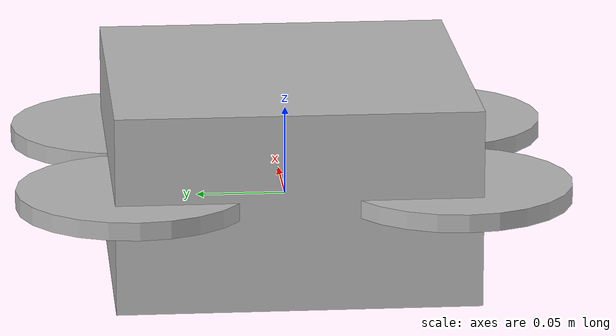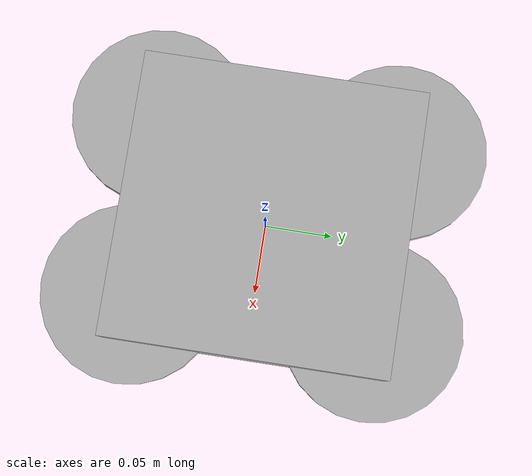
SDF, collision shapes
<?xml version="1.0"?>

<sdf version="1.10">

  <model name="starling_v2_notune">

    <pose>0 0 0 0 0 0</pose>
    <self_collide>false</self_collide>
    <static>false</static>

    <link name="base_link">

      <pose>0 0 0 0 0 0</pose>

      <inertial>
        <pose>0 0 0 0 0 0</pose>
        <mass>0.280</mass>
        <inertia>
          <ixx>0.006</ixx>
          <ixy>0</ixy>
          <ixz>0</ixz>
          <iyy>0.006</iyy>
          <iyz>0</iyz>
          <izz>0.010</izz>
        </inertia>
      </inertial>

      <collision name="base_link_collision">
        <pose>0 0 0.018 0 0 0</pose>
        <geometry>
          <box>
            <size>0.20 0.20 0.11</size>
          </box>
        </geometry>
      </collision>

      <visual name="base_link_visual">
        <pose>0 0 0 1.57079632679 0 1.57079632679</pose>
        <geometry>
          <mesh>
            <scale>0.001 0.001 0.001</scale>
            <uri>meshes/Starling_base.obj</uri>
          </mesh>
        </geometry>
        <cast_shadows>false</cast_shadows>
      </visual>

      <sensor name="imu_sensor" type="imu">
        <always_on>true</always_on>
        <update_rate>200</update_rate>
        <imu>
          <enable_orientation>true</enable_orientation>
          <angular_velocity>
            <x>
              <noise type="gaussian">
                <mean>0</mean>
                <stddev>0.0005</stddev>
                <bias_mean>0.0</bias_mean>
                <bias_stddev>0.0002</bias_stddev>
                <dynamic_bias_stddev>0.0</dynamic_bias_stddev>
                <dynamic_bias_correlation_time>1000.0</dynamic_bias_correlation_time>
                <precision>0.00001</precision>
              </noise>
            </x>
            <y>
              <noise type="gaussian">
                <mean>0</mean>
                <stddev>0.0005</stddev>
                <bias_mean>0.0</bias_mean>
                <bias_stddev>0.0002</bias_stddev>
                <dynamic_bias_stddev>0.0</dynamic_bias_stddev>
                <dynamic_bias_correlation_time>1000.0</dynamic_bias_correlation_time>
                <precision>0.00001</precision>
              </noise>
            </y>
            <z>
              <noise type="gaussian">
                <mean>0</mean>
                <stddev>0.0005</stddev>
                <bias_mean>0.0</bias_mean>
                <bias_stddev>0.0002</bias_stddev>
                <dynamic_bias_stddev>0.0</dynamic_bias_stddev>
                <dynamic_bias_correlation_time>1000.0</dynamic_bias_correlation_time>
                <precision>0.00001</precision>
              </noise>
            </z>
          </angular_velocity>
          <linear_acceleration>
            <x>
              <noise type="gaussian">
                <mean>0</mean>
                <stddev>0.003</stddev>
                <bias_mean>0.0</bias_mean>
                <bias_stddev>0.005</bias_stddev>
                <dynamic_bias_stddev>0.0</dynamic_bias_stddev>
                <dynamic_bias_correlation_time>1000.0</dynamic_bias_correlation_time>
                <precision>0.001</precision>
              </noise>
            </x>
            <y>
              <noise type="gaussian">
                <mean>0</mean>
                <stddev>0.003</stddev>
                <bias_mean>0.0</bias_mean>
                <bias_stddev>0.005</bias_stddev>
                <dynamic_bias_stddev>0.0</dynamic_bias_stddev>
                <dynamic_bias_correlation_time>1000.0</dynamic_bias_correlation_time>
                <precision>0.001</precision>
              </noise>
            </y>
            <z>
              <noise type="gaussian">
                <mean>0</mean>
                <stddev>0.003</stddev>
                <bias_mean>0.0</bias_mean>
                <bias_stddev>0.005</bias_stddev>
                <dynamic_bias_stddev>0.0</dynamic_bias_stddev>
                <dynamic_bias_correlation_time>1000.0</dynamic_bias_correlation_time>
                <precision>0.001</precision>
              </noise>
            </z>
          </linear_acceleration>
        </imu>
      </sensor>

      <sensor name="air_pressure_sensor" type="air_pressure">
        <always_on>true</always_on>
        <update_rate>50</update_rate>
        <air_pressure>
          <pressure>
            <noise type="gaussian">
              <mean>0</mean>
              <stddev>0.01</stddev>
            </noise>
          </pressure>
        </air_pressure>
      </sensor>

      <sensor name="magnetometer_sensor" type="magnetometer">
        <always_on>true</always_on>
        <update_rate>100</update_rate>
        <magnetometer>
          <x>
            <noise type="gaussian">
              <stddev>0.0001</stddev>
            </noise>
          </x>
          <y>
            <noise type="gaussian">
              <stddev>0.0001</stddev>
            </noise>
          </y>
          <z>
            <noise type="gaussian">
              <stddev>0.0001</stddev>
            </noise>
          </z>
        </magnetometer>
      </sensor>

      <sensor name="IMX412_front" type="camera">
        <pose>0.07 0.006 0.002 0 0 0</pose>
        <always_on>false</always_on>
        <update_rate>5</update_rate>
        <camera>
          <horizontal_fov>2.1014</horizontal_fov>
          <lens>
            <intrinsics>
              <fx>1161</fx>
              <fy>1161</fy>
              <cx>2028</cx>
              <cy>1520</cy>
              <s>0</s>
            </intrinsics>
          </lens>
          <distortion>
            <k1>0.0</k1>
            <k2>0.0</k2>
            <k3>0.0</k3>
            <p1>0.0</p1>
            <p2>0.0</p2>
            <center>0.5 0.5</center>
          </distortion>
          <image>
            <width>4056</width>
            <height>3040</height>
            <format>R8G8B8</format>
          </image>
          <clip>
            <near>0.02</near>
            <far>100</far>
          </clip>
          <noise>
            <type>gaussian</type>
            <mean>0</mean>
            <stddev>0.007</stddev>
          </noise>
        </camera>
      </sensor>

      <sensor name="AR0144_front" type="camera">
        <pose>0.07 0.006 0.010 0 0 0</pose>
        <always_on>false</always_on>
        <update_rate>1</update_rate>
        <camera>
          <horizontal_fov>2.303</horizontal_fov>
          <lens>
            <intrinsics>
              <fx>605</fx>
              <fy>604</fy>
              <cx>640</cx>
              <cy>400</cy>
              <s>0</s>
            </intrinsics>
          </lens>
          <distortion>
            <k1>0.0</k1>
            <k2>0.0</k2>
            <k3>0.0</k3>
            <p1>0.0</p1>
            <p2>0.0</p2>
            <center>0.5 0.5</center>
          </distortion>
          <image>
            <width>1280</width>
            <height>800</height>
            <format>R8G8B8</format>
          </image>
          <clip>
            <near>0.02</near>
            <far>100</far>
          </clip>
          <noise>
            <type>gaussian</type>
            <mean>0</mean>
            <stddev>0.007</stddev>
          </noise>
        </camera>
      </sensor>

       <sensor name="AR0144_back" type="camera">
        <pose>-0.062 -0.010 0.016 0 0 3.14159265</pose>
        <always_on>false</always_on>
        <update_rate>1</update_rate>
        <camera>
          <horizontal_fov>2.303</horizontal_fov>
          <lens>
            <intrinsics>
              <fx>605</fx>
              <fy>604</fy>
              <cx>640</cx>
              <cy>400</cy>
              <s>0</s>
            </intrinsics>
          </lens>
          <distortion>
            <k1>0.0</k1>
            <k2>0.0</k2>
            <k3>0.0</k3>
            <p1>0.0</p1>
            <p2>0.0</p2>
            <center>0.5 0.5</center>
          </distortion>
          <image>
            <width>1280</width>
            <height>800</height>
            <format>R8G8B8</format>
          </image>
          <clip>
            <near>0.02</near>
            <far>100</far>
          </clip>
          <noise>
            <type>gaussian</type>
            <mean>0</mean>
            <stddev>0.007</stddev>
          </noise>
        </camera>
      </sensor>

      <sensor name="AR0144_down" type="camera">
        <pose>-0.057 0.011 -0.009 0 1.571 -1.571</pose>
        <always_on>false</always_on>
        <update_rate>10</update_rate>
        <camera>
          <horizontal_fov>2.303</horizontal_fov>
          <lens>
            <intrinsics>
              <fx>605</fx>
              <fy>604</fy>
              <cx>640</cx>
              <cy>400</cy>
              <s>0</s>
            </intrinsics>
          </lens>
          <distortion>
            <k1>0.0</k1>
            <k2>0.0</k2>
            <k3>0.0</k3>
            <p1>0.0</p1>
            <p2>0.0</p2>
            <center>0.5 0.5</center>
          </distortion>
          <image>
            <width>1280</width>
            <height>800</height>
            <format>R8G8B8</format>
          </image>
          <clip>
            <near>0.02</near>
            <far>100</far>
          </clip>
          <noise>
            <type>gaussian</type>
            <mean>0</mean>
            <stddev>0.007</stddev>
          </noise>
        </camera>
      </sensor>

      <sensor name="pmd_flexx2_tof" type="depth_camera">
        <pose>0.07 -0.0095 0.016 0 0 0</pose> <!-- Adjust position and orientation as needed -->
        <always_on>true</always_on>
        <update_rate>5</update_rate>
        <camera>
          <!-- 1.85 rad = 106 deg horizontal, per the M0178 datasheet. Vertical (86 deg real)
               and diagonal are not settable: gz derives them from this and the 4:3 aspect. -->
          <horizontal_fov>1.85</horizontal_fov>
          <image>
            <width>240</width>
            <height>180</height>
            <format>R8G8B8</format>
          </image>
          <clip>
            <near>0.1</near>
            <far>5.0</far>
          </clip>
          <noise>
            <type>gaussian</type>
            <mean>0</mean>
            <stddev>0.0</stddev>
          </noise>
        </camera>
        <visualize>true</visualize>
      </sensor>

      <sensor name="VL53L1X_down" type="gpu_lidar">
        <pose>-0.057 -0.011 -0.009 0 1.571 0</pose>
        <always_on>true</always_on>
        <update_rate>10</update_rate>
        <visualize>true</visualize>
        <ray>
          <scan>
            <horizontal>
              <samples>100</samples>
              <resolution>1</resolution>
              <min_angle>-0.5</min_angle>
              <max_angle>0.5</max_angle>
            </horizontal>
            <vertical>
              <samples>1</samples>
              <resolution>1</resolution>
              <min_angle>0</min_angle>
              <max_angle>0</max_angle>
            </vertical>
          </scan>
          <range>
            <min>0.001</min>
            <max>4</max>
            <resolution>0.01</resolution>
          </range>
          <noise>
            <type>gaussian</type>
            <mean>0</mean>
            <stddev>0.001</stddev>
          </noise>
        </ray>
      </sensor>

      <sensor name="navsat_sensor" type="navsat">
        <always_on>true</always_on>
        <update_rate>10</update_rate>
      </sensor>

    </link>

    <link name="rotor_1">

      <pose>-0.066 0.088 0.01470 0 0 0</pose>

      <inertial>
        <pose>0 0 0 0 0 0</pose>
        <mass>0.005</mass>
        <inertia>
          <ixx>9.75e-07</ixx>
          <ixy>0</ixy>
          <ixz>0</ixz>
          <iyy>8.13545e-05</iyy>
          <iyz>0</iyz>
          <izz>8.22545e-05</izz>
        </inertia>
      </inertial>

      <collision name="rotor_1_collision">
        <pose>0 0 0.005 0 0 0</pose>
        <geometry>
          <cylinder>
            <length>0.010</length>
            <radius>0.065</radius>
          </cylinder>
        </geometry>
        <surface>
          <contact>
            <ode />
          </contact>
          <friction>
            <ode />
          </friction>
        </surface>
      </collision>

      <visual name="rotor_1_visual">
        <pose>0 0 0 1.57079632679 0 -1.57079632679</pose>
        <geometry>
          <mesh>
            <scale>0.001 0.001 0.001</scale>
            <uri>meshes/Starling_propeller_CCW.obj</uri>
          </mesh>
        </geometry>
        <cast_shadows>false</cast_shadows>
      </visual>
      <gravity>true</gravity>
      <velocity_decay />
    </link>

    <link name="rotor_0">

      <pose>0.066 -0.088 0.01470 0 0 0</pose>

      <inertial>
        <pose>0 0 0 0 0 0</pose>
        <mass>0.005</mass>
        <inertia>
          <ixx>9.75e-07</ixx>
          <ixy>0</ixy>
          <ixz>0</ixz>
          <iyy>8.13545e-05</iyy>
          <iyz>0</iyz>
          <izz>8.22545e-05</izz>
        </inertia>
      </inertial>

      <collision name="rotor_0_collision">
        <pose>0 0 0.005 0 0 0</pose>
        <geometry>
          <cylinder>
            <length>0.010</length>
            <radius>0.065</radius>
          </cylinder>
        </geometry>
        <surface>
          <contact>
            <ode />
          </contact>
          <friction>
            <ode />
          </friction>
        </surface>
      </collision>

      <visual name="rotor_0_visual">
        <pose>0 0 0 1.57079632679 0 -1.57079632679</pose>
        <geometry>
          <mesh>
            <scale>0.001 0.001 0.001</scale>
            <uri>meshes/Starling_propeller_CCW.obj</uri>
          </mesh>
        </geometry>
        <cast_shadows>false</cast_shadows>
      </visual>
      <gravity>true</gravity>
      <velocity_decay />
    </link>

    <link name="rotor_3">

      <pose>-0.066 -0.088 0.01470 0 0 0</pose>

      <inertial>
        <pose>0 0 0 0 0 0</pose>
        <mass>0.005</mass>
        <inertia>
          <ixx>9.75e-07</ixx>
          <ixy>0</ixy>
          <ixz>0</ixz>
          <iyy>8.13545e-05</iyy>
          <iyz>0</iyz>
          <izz>8.22545e-05</izz>
        </inertia>
      </inertial>

      <collision name="rotor_3_collision">
        <pose>0 0 0.005 0 0 0</pose>
        <geometry>
          <cylinder>
            <length>0.010</length>
            <radius>0.065</radius>
          </cylinder>
        </geometry>
        <surface>
          <contact>
            <ode />
          </contact>
          <friction>
            <ode />
          </friction>
        </surface>
      </collision>

      <visual name="rotor_3_visual">
        <pose>0 0 0 1.57079632679 0 -1.57079632679</pose>
        <geometry>
          <mesh>
            <scale>0.001 0.001 0.001</scale>
            <uri>meshes/Starling_propeller_CW.obj</uri>
          </mesh>
        </geometry>
        <cast_shadows>false</cast_shadows>
      </visual>
      <gravity>true</gravity>
      <velocity_decay />
    </link>

    <link name="rotor_2">

      <pose>0.066 0.088 0.01470 0 0 0</pose>

      <inertial>
        <pose>0 0 0 0 0 0</pose>
        <mass>0.005</mass>
        <inertia>
          <ixx>9.75e-07</ixx>
          <ixy>0</ixy>
          <ixz>0</ixz>
          <iyy>8.13545e-05</iyy>
          <iyz>0</iyz>
          <izz>8.22545e-05</izz>
        </inertia>
      </inertial>

      <collision name="rotor_2_collision">
        <pose>0 0 0.005 0 0 0</pose>
        <geometry>
          <cylinder>
            <length>0.010</length>
            <radius>0.065</radius>
          </cylinder>
        </geometry>
        <surface>
          <contact>
            <ode />
          </contact>
          <friction>
            <ode />
          </friction>
        </surface>
      </collision>

      <visual name="rotor_2_visual">
        <pose>0 0 0 1.57079632679 0 -1.57079632679</pose>
        <geometry>
          <mesh>
            <scale>0.001 0.001 0.001</scale>
            <uri>meshes/Starling_propeller_CW.obj</uri>
          </mesh>
        </geometry>
        <cast_shadows>false</cast_shadows>
      </visual>
      <gravity>true</gravity>
      <velocity_decay />
    </link>

    <joint name="rotor_0_joint" type="revolute">
      <child>rotor_0</child>
      <parent>base_link</parent>
      <axis>
        <xyz>0 0 1</xyz>
        <limit>
          <lower>-1e+16</lower>
          <upper>1e+16</upper>
        </limit>
        <dynamics>
          <spring_reference>0</spring_reference>
          <spring_stiffness>0</spring_stiffness>
          <damping>0.001</damping>
        </dynamics>
      </axis>
    </joint>

    <joint name="rotor_1_joint" type="revolute">
      <child>rotor_1</child>
      <parent>base_link</parent>
      <axis>
        <xyz>0 0 1</xyz>
        <limit>
          <lower>-1e+16</lower>
          <upper>1e+16</upper>
        </limit>
        <dynamics>
          <spring_reference>0</spring_reference>
          <spring_stiffness>0</spring_stiffness>
          <damping>0.001</damping>
        </dynamics>
      </axis>
    </joint>

    <joint name="rotor_2_joint" type="revolute">
      <child>rotor_2</child>
      <parent>base_link</parent>
      <axis>
        <xyz>0 0 1</xyz>
        <limit>
          <lower>-1e+16</lower>
          <upper>1e+16</upper>
        </limit>
        <dynamics>
          <spring_reference>0</spring_reference>
          <spring_stiffness>0</spring_stiffness>
          <damping>0.001</damping>
        </dynamics>
      </axis>
    </joint>

    <joint name="rotor_3_joint" type="revolute">
      <child>rotor_3</child>
      <parent>base_link</parent>
      <axis>
        <xyz>0 0 1</xyz>
        <limit>
          <lower>-1e+16</lower>
          <upper>1e+16</upper>
        </limit>
        <dynamics>
          <spring_reference>0</spring_reference>
          <spring_stiffness>0</spring_stiffness>
          <damping>0.001</damping>
        </dynamics>
      </axis>
    </joint>

    <plugin filename="gz-sim-multicopter-motor-model-system" name="gz::sim::systems::MulticopterMotorModel">
      <jointName>rotor_0_joint</jointName>
      <linkName>rotor_0</linkName>
      <turningDirection>ccw</turningDirection>
      <timeConstantUp>0.0125</timeConstantUp>
      <timeConstantDown>0.025</timeConstantDown>
      <maxRotVelocity>2325.0</maxRotVelocity>
      <motorConstant>8.54858e-06</motorConstant>
      <momentConstant>0.0071</momentConstant>
      <commandSubTopic>command/motor_speed</commandSubTopic>
      <motorNumber>0</motorNumber>
      <rotorDragCoefficient>0.0001</rotorDragCoefficient>
      <rollingMomentCoefficient>1e-06</rollingMomentCoefficient>
      <rotorVelocitySlowdownSim>1</rotorVelocitySlowdownSim>
      <motorType>velocity</motorType>
    </plugin>

    <plugin filename="gz-sim-multicopter-motor-model-system" name="gz::sim::systems::MulticopterMotorModel">
      <jointName>rotor_1_joint</jointName>
      <linkName>rotor_1</linkName>
      <turningDirection>ccw</turningDirection>
      <timeConstantUp>0.0125</timeConstantUp>
      <timeConstantDown>0.025</timeConstantDown>
      <maxRotVelocity>2325.0</maxRotVelocity>
      <motorConstant>8.54858e-06</motorConstant>
      <momentConstant>0.0071</momentConstant>
      <commandSubTopic>command/motor_speed</commandSubTopic>
      <motorNumber>1</motorNumber>
      <rotorDragCoefficient>0.0001</rotorDragCoefficient>
      <rollingMomentCoefficient>1e-06</rollingMomentCoefficient>
      <rotorVelocitySlowdownSim>1</rotorVelocitySlowdownSim>
      <motorType>velocity</motorType>
    </plugin>

    <plugin filename="gz-sim-multicopter-motor-model-system" name="gz::sim::systems::MulticopterMotorModel">
      <jointName>rotor_2_joint</jointName>
      <linkName>rotor_2</linkName>
      <turningDirection>cw</turningDirection>
      <timeConstantUp>0.0125</timeConstantUp>
      <timeConstantDown>0.025</timeConstantDown>
      <maxRotVelocity>2325.0</maxRotVelocity>
      <motorConstant>8.54858e-06</motorConstant>
      <momentConstant>0.0071</momentConstant>
      <commandSubTopic>command/motor_speed</commandSubTopic>
      <motorNumber>2</motorNumber>
      <rotorDragCoefficient>0.0001</rotorDragCoefficient>
      <rollingMomentCoefficient>1e-06</rollingMomentCoefficient>
      <rotorVelocitySlowdownSim>1</rotorVelocitySlowdownSim>
      <motorType>velocity</motorType>
    </plugin>

    <plugin filename="gz-sim-multicopter-motor-model-system" name="gz::sim::systems::MulticopterMotorModel">
      <jointName>rotor_3_joint</jointName>
      <linkName>rotor_3</linkName>
      <turningDirection>cw</turningDirection>
      <timeConstantUp>0.0125</timeConstantUp>
      <timeConstantDown>0.025</timeConstantDown>
      <maxRotVelocity>2325.0</maxRotVelocity>
      <motorConstant>8.54858e-06</motorConstant>
      <momentConstant>0.0071</momentConstant>
      <commandSubTopic>command/motor_speed</commandSubTopic>
      <motorNumber>3</motorNumber>
      <rotorDragCoefficient>0.0001</rotorDragCoefficient>
      <rollingMomentCoefficient>1e-06</rollingMomentCoefficient>
      <rotorVelocitySlowdownSim>1</rotorVelocitySlowdownSim>
      <motorType>velocity</motorType>
    </plugin>

    <plugin name="gz::sim::systems::PosePublisher" filename="gz-sim-pose-publisher-system">
        <use_pose_vector_msg>true</use_pose_vector_msg>
        <publish_nested_model_pose>true</publish_nested_model_pose>
        <publish_collision_pose>false</publish_collision_pose>
        <publish_visual_pose>false</publish_visual_pose>
        <publish_link_pose>false</publish_link_pose>
        <update_frequency>100</update_frequency>
    </plugin>

    <plugin filename="gz-sim-joint-state-publisher-system" name="gz::sim::systems::JointStatePublisher">
      <joint_name>rotor_0_joint</joint_name>
      <joint_name>rotor_1_joint</joint_name>
      <joint_name>rotor_2_joint</joint_name>
      <joint_name>rotor_3_joint</joint_name>
      <update_rate>20</update_rate>
    </plugin>

  </model>

</sdf>
